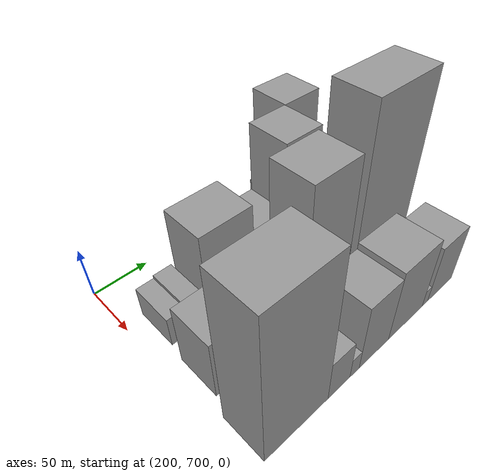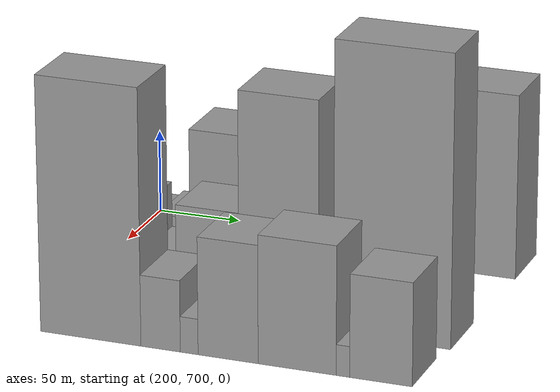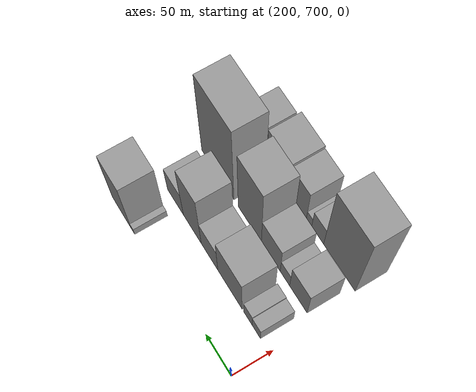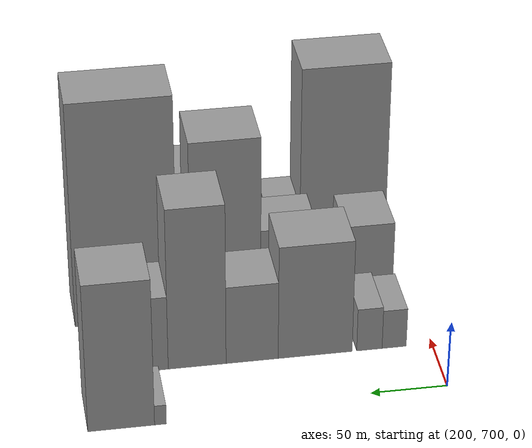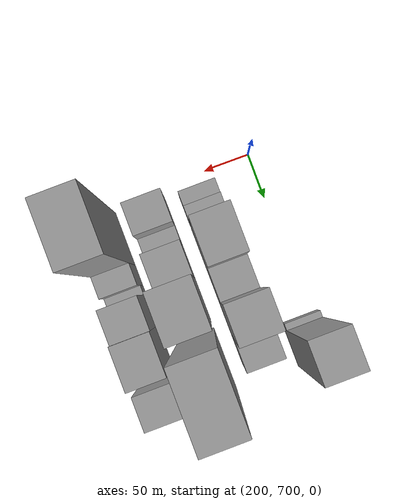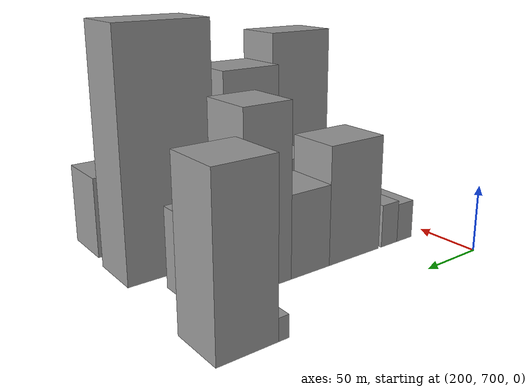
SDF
<sdf version="1.6">
 <world name="default">
  <model name="building_158">
   <static>1</static>
   <pose>210.0000 885.6894 0 0.000000 0.000000 0.000000</pose>
   <link name="link">
    <pose>0 0 7.50 0 0 0</pose>
    <collision name="collision"><geometry><box><size>40.0000 7.4665 15.0000</size></box></geometry></collision>
    <visual name="visual">
     <cast_shadows>0</cast_shadows>
     <geometry><box><size>40.0000 7.4665 15.0000</size></box></geometry>
     <material>
      <script>
       <uri>model://grey_wall/materials/scripts</uri>
       <uri>model://grey_wall/materials/textures</uri>
       <name>vrc/grey_wall</name>
      </script>
     </material>
    </visual>
   </link>
  </model>
  <model name="building_159">
   <static>1</static>
   <pose>210.0000 910.2798 0 0.000000 0.000000 0.000000</pose>
   <link name="link">
    <pose>0 0 55.50 0 0 0</pose>
    <collision name="collision"><geometry><box><size>40.0000 41.7143 111.0000</size></box></geometry></collision>
    <visual name="visual">
     <cast_shadows>0</cast_shadows>
     <geometry><box><size>40.0000 41.7143 111.0000</size></box></geometry>
     <material>
      <script>
       <uri>model://grey_wall/materials/scripts</uri>
       <uri>model://grey_wall/materials/textures</uri>
       <name>vrc/grey_wall</name>
      </script>
     </material>
    </visual>
   </link>
  </model>
  <model name="building_204">
   <static>1</static>
   <pose>265.0000 725.2321 0 0.000000 0.000000 0.000000</pose>
   <link name="link">
    <pose>0 0 15.00 0 0 0</pose>
    <collision name="collision"><geometry><box><size>40.0000 16.0952 30.0000</size></box></geometry></collision>
    <visual name="visual">
     <cast_shadows>0</cast_shadows>
     <geometry><box><size>40.0000 16.0952 30.0000</size></box></geometry>
     <material>
      <script>
       <uri>model://grey_wall/materials/scripts</uri>
       <uri>model://grey_wall/materials/textures</uri>
       <name>vrc/grey_wall</name>
      </script>
     </material>
    </visual>
   </link>
  </model>
  <model name="building_205">
   <static>1</static>
   <pose>265.0000 741.7090 0 0.000000 0.000000 0.000000</pose>
   <link name="link">
    <pose>0 0 16.50 0 0 0</pose>
    <collision name="collision"><geometry><box><size>40.0000 16.8586 33.0000</size></box></geometry></collision>
    <visual name="visual">
     <cast_shadows>0</cast_shadows>
     <geometry><box><size>40.0000 16.8586 33.0000</size></box></geometry>
     <material>
      <script>
       <uri>model://grey_wall/materials/scripts</uri>
       <uri>model://grey_wall/materials/textures</uri>
       <name>vrc/grey_wall</name>
      </script>
     </material>
    </visual>
   </link>
  </model>
  <model name="building_206">
   <static>1</static>
   <pose>265.0000 777.5826 0 0.000000 0.000000 0.000000</pose>
   <link name="link">
    <pose>0 0 43.50 0 0 0</pose>
    <collision name="collision"><geometry><box><size>40.0000 48.8886 87.0000</size></box></geometry></collision>
    <visual name="visual">
     <cast_shadows>0</cast_shadows>
     <geometry><box><size>40.0000 48.8886 87.0000</size></box></geometry>
     <material>
      <script>
       <uri>model://grey_wall/materials/scripts</uri>
       <uri>model://grey_wall/materials/textures</uri>
       <name>vrc/grey_wall</name>
      </script>
     </material>
    </visual>
   </link>
  </model>
  <model name="building_207">
   <static>1</static>
   <pose>265.0000 819.0999 0 0.000000 0.000000 0.000000</pose>
   <link name="link">
    <pose>0 0 30.00 0 0 0</pose>
    <collision name="collision"><geometry><box><size>40.0000 34.1460 60.0000</size></box></geometry></collision>
    <visual name="visual">
     <cast_shadows>0</cast_shadows>
     <geometry><box><size>40.0000 34.1460 60.0000</size></box></geometry>
     <material>
      <script>
       <uri>model://grey_wall/materials/scripts</uri>
       <uri>model://grey_wall/materials/textures</uri>
       <name>vrc/grey_wall</name>
      </script>
     </material>
    </visual>
   </link>
  </model>
  <model name="building_208">
   <static>1</static>
   <pose>265.0000 855.0002 0 0.000000 0.000000 0.000000</pose>
   <link name="link">
    <pose>0 0 61.50 0 0 0</pose>
    <collision name="collision"><geometry><box><size>40.0000 37.6546 123.0000</size></box></geometry></collision>
    <visual name="visual">
     <cast_shadows>0</cast_shadows>
     <geometry><box><size>40.0000 37.6546 123.0000</size></box></geometry>
     <material>
      <script>
       <uri>model://grey_wall/materials/scripts</uri>
       <uri>model://grey_wall/materials/textures</uri>
       <name>vrc/grey_wall</name>
      </script>
     </material>
    </visual>
   </link>
  </model>
  <model name="building_209">
   <static>1</static>
   <pose>265.0000 890.9066 0 0.000000 0.000000 0.000000</pose>
   <link name="link">
    <pose>0 0 28.50 0 0 0</pose>
    <collision name="collision"><geometry><box><size>40.0000 34.1583 57.0000</size></box></geometry></collision>
    <visual name="visual">
     <cast_shadows>0</cast_shadows>
     <geometry><box><size>40.0000 34.1583 57.0000</size></box></geometry>
     <material>
      <script>
       <uri>model://grey_wall/materials/scripts</uri>
       <uri>model://grey_wall/materials/textures</uri>
       <name>vrc/grey_wall</name>
      </script>
     </material>
    </visual>
   </link>
  </model>
  <model name="building_261">
   <static>1</static>
   <pose>320.0000 731.6997 0 0.000000 0.000000 0.000000</pose>
   <link name="link">
    <pose>0 0 30.00 0 0 0</pose>
    <collision name="collision"><geometry><box><size>40.0000 33.6733 60.0000</size></box></geometry></collision>
    <visual name="visual">
     <cast_shadows>0</cast_shadows>
     <geometry><box><size>40.0000 33.6733 60.0000</size></box></geometry>
     <material>
      <script>
       <uri>model://grey_wall/materials/scripts</uri>
       <uri>model://grey_wall/materials/textures</uri>
       <name>vrc/grey_wall</name>
      </script>
     </material>
    </visual>
   </link>
  </model>
  <model name="building_262">
   <static>1</static>
   <pose>320.0000 757.8228 0 0.000000 0.000000 0.000000</pose>
   <link name="link">
    <pose>0 0 16.50 0 0 0</pose>
    <collision name="collision"><geometry><box><size>40.0000 18.5729 33.0000</size></box></geometry></collision>
    <visual name="visual">
     <cast_shadows>0</cast_shadows>
     <geometry><box><size>40.0000 18.5729 33.0000</size></box></geometry>
     <material>
      <script>
       <uri>model://grey_wall/materials/scripts</uri>
       <uri>model://grey_wall/materials/textures</uri>
       <name>vrc/grey_wall</name>
      </script>
     </material>
    </visual>
   </link>
  </model>
  <model name="building_263">
   <static>1</static>
   <pose>320.0000 785.8464 0 0.000000 0.000000 0.000000</pose>
   <link name="link">
    <pose>0 0 31.50 0 0 0</pose>
    <collision name="collision"><geometry><box><size>40.0000 37.4743 63.0000</size></box></geometry></collision>
    <visual name="visual">
     <cast_shadows>0</cast_shadows>
     <geometry><box><size>40.0000 37.4743 63.0000</size></box></geometry>
     <material>
      <script>
       <uri>model://grey_wall/materials/scripts</uri>
       <uri>model://grey_wall/materials/textures</uri>
       <name>vrc/grey_wall</name>
      </script>
     </material>
    </visual>
   </link>
  </model>
  <model name="building_264">
   <static>1</static>
   <pose>320.0000 828.1512 0 0.000000 0.000000 0.000000</pose>
   <link name="link">
    <pose>0 0 67.50 0 0 0</pose>
    <collision name="collision"><geometry><box><size>40.0000 47.1353 135.0000</size></box></geometry></collision>
    <visual name="visual">
     <cast_shadows>0</cast_shadows>
     <geometry><box><size>40.0000 47.1353 135.0000</size></box></geometry>
     <material>
      <script>
       <uri>model://grey_wall/materials/scripts</uri>
       <uri>model://grey_wall/materials/textures</uri>
       <name>vrc/grey_wall</name>
      </script>
     </material>
    </visual>
   </link>
  </model>
  <model name="building_265">
   <static>1</static>
   <pose>320.0000 894.7632 0 0.000000 0.000000 0.000000</pose>
   <link name="link">
    <pose>0 0 85.50 0 0 0</pose>
    <collision name="collision"><geometry><box><size>40.0000 68.0886 171.0000</size></box></geometry></collision>
    <visual name="visual">
     <cast_shadows>0</cast_shadows>
     <geometry><box><size>40.0000 68.0886 171.0000</size></box></geometry>
     <material>
      <script>
       <uri>model://grey_wall/materials/scripts</uri>
       <uri>model://grey_wall/materials/textures</uri>
       <name>vrc/grey_wall</name>
      </script>
     </material>
    </visual>
   </link>
  </model>
  <model name="building_312">
   <static>1</static>
   <pose>375.0000 738.5047 0 0.000000 0.000000 0.000000</pose>
   <link name="link">
    <pose>0 0 75.00 0 0 0</pose>
    <collision name="collision"><geometry><box><size>40.0000 59.9862 150.0000</size></box></geometry></collision>
    <visual name="visual">
     <cast_shadows>0</cast_shadows>
     <geometry><box><size>40.0000 59.9862 150.0000</size></box></geometry>
     <material>
      <script>
       <uri>model://grey_wall/materials/scripts</uri>
       <uri>model://grey_wall/materials/textures</uri>
       <name>vrc/grey_wall</name>
      </script>
     </material>
    </visual>
   </link>
  </model>
  <model name="building_313">
   <static>1</static>
   <pose>375.0000 780.1346 0 0.000000 0.000000 0.000000</pose>
   <link name="link">
    <pose>0 0 21.00 0 0 0</pose>
    <collision name="collision"><geometry><box><size>40.0000 23.2735 42.0000</size></box></geometry></collision>
    <visual name="visual">
     <cast_shadows>0</cast_shadows>
     <geometry><box><size>40.0000 23.2735 42.0000</size></box></geometry>
     <material>
      <script>
       <uri>model://grey_wall/materials/scripts</uri>
       <uri>model://grey_wall/materials/textures</uri>
       <name>vrc/grey_wall</name>
      </script>
     </material>
    </visual>
   </link>
  </model>
  <model name="building_314">
   <static>1</static>
   <pose>375.0000 796.9879 0 0.000000 0.000000 0.000000</pose>
   <link name="link">
    <pose>0 0 10.50 0 0 0</pose>
    <collision name="collision"><geometry><box><size>40.0000 10.4333 21.0000</size></box></geometry></collision>
    <visual name="visual">
     <cast_shadows>0</cast_shadows>
     <geometry><box><size>40.0000 10.4333 21.0000</size></box></geometry>
     <material>
      <script>
       <uri>model://grey_wall/materials/scripts</uri>
       <uri>model://grey_wall/materials/textures</uri>
       <name>vrc/grey_wall</name>
      </script>
     </material>
    </visual>
   </link>
  </model>
  <model name="building_315">
   <static>1</static>
   <pose>375.0000 819.7241 0 0.000000 0.000000 0.000000</pose>
   <link name="link">
    <pose>0 0 34.50 0 0 0</pose>
    <collision name="collision"><geometry><box><size>40.0000 35.0391 69.0000</size></box></geometry></collision>
    <visual name="visual">
     <cast_shadows>0</cast_shadows>
     <geometry><box><size>40.0000 35.0391 69.0000</size></box></geometry>
     <material>
      <script>
       <uri>model://grey_wall/materials/scripts</uri>
       <uri>model://grey_wall/materials/textures</uri>
       <name>vrc/grey_wall</name>
      </script>
     </material>
    </visual>
   </link>
  </model>
  <model name="building_316">
   <static>1</static>
   <pose>375.0000 859.7355 0 0.000000 0.000000 0.000000</pose>
   <link name="link">
    <pose>0 0 37.50 0 0 0</pose>
    <collision name="collision"><geometry><box><size>40.0000 44.9836 75.0000</size></box></geometry></collision>
    <visual name="visual">
     <cast_shadows>0</cast_shadows>
     <geometry><box><size>40.0000 44.9836 75.0000</size></box></geometry>
     <material>
      <script>
       <uri>model://grey_wall/materials/scripts</uri>
       <uri>model://grey_wall/materials/textures</uri>
       <name>vrc/grey_wall</name>
      </script>
     </material>
    </visual>
   </link>
  </model>
  <model name="building_317">
   <static>1</static>
   <pose>375.0000 886.0742 0 0.000000 0.000000 0.000000</pose>
   <link name="link">
    <pose>0 0 9.00 0 0 0</pose>
    <collision name="collision"><geometry><box><size>40.0000 7.6938 18.0000</size></box></geometry></collision>
    <visual name="visual">
     <cast_shadows>0</cast_shadows>
     <geometry><box><size>40.0000 7.6938 18.0000</size></box></geometry>
     <material>
      <script>
       <uri>model://grey_wall/materials/scripts</uri>
       <uri>model://grey_wall/materials/textures</uri>
       <name>vrc/grey_wall</name>
      </script>
     </material>
    </visual>
   </link>
  </model>
  <model name="building_318">
   <static>1</static>
   <pose>375.0000 907.6923 0 0.000000 0.000000 0.000000</pose>
   <link name="link">
    <pose>0 0 30.00 0 0 0</pose>
    <collision name="collision"><geometry><box><size>40.0000 35.5424 60.0000</size></box></geometry></collision>
    <visual name="visual">
     <cast_shadows>0</cast_shadows>
     <geometry><box><size>40.0000 35.5424 60.0000</size></box></geometry>
     <material>
      <script>
       <uri>model://grey_wall/materials/scripts</uri>
       <uri>model://grey_wall/materials/textures</uri>
       <name>vrc/grey_wall</name>
      </script>
     </material>
    </visual>
   </link>
  </model>
 </world>
</sdf>
